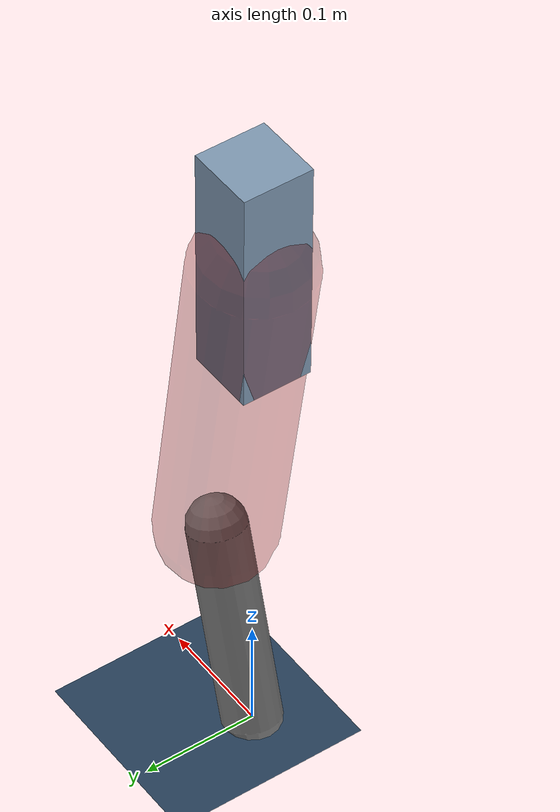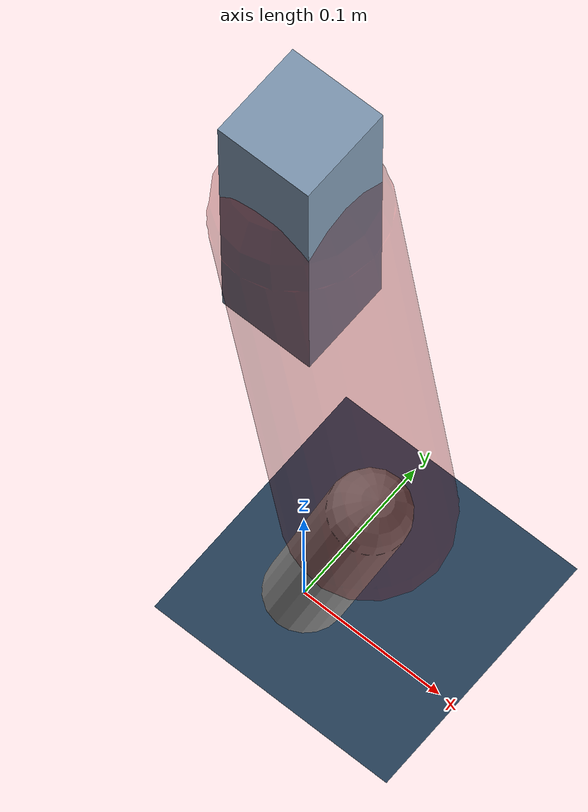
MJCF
<mujoco model="Hopper2D">
	<compiler inertiafromgeom="true" angle="radian" />
	<option timestep="0.001" integrator="implicit" cone="elliptic" solver="Newton" tolerance="1e-10" />

	<default>
		<geom contype="1" conaffinity="1" condim="3" friction="2 0.005 0.0001" solref="0.005 1" />
		<joint limited="true" damping="0.1" />
	</default>

	<asset>
		<texture name="skybox" type="skybox" builtin="gradient" rgb1=".4 .6 .8" rgb2="0 0 0" width="800" height="800" />
		<texture name="grid" type="2d" builtin="checker" rgb1=".1 .2 .3" rgb2=".2 .3 .4" width="300" height="300" mark="edge" markrgb=".2 .3 .4" />
		<material name="ground" texture="grid" texrepeat="1 1" texuniform="true" reflectance="0.1" />
		<material name="leg" rgba="0.5 0.6 0.7 1" />
	</asset>

	<worldbody>

		<geom name="floor" type="plane" size="5 5 0.25" material="ground" />

		<light directional="false" diffuse="0.8 0.8 0.8" specular="0.3 0.3 0.3" pos="0 0 2" dir="0 0 -1" />
		<light mode="targetbodycom" target="base" directional="false" diffuse="0.8 0.8 0.8" specular="0.3 0.3 0.3" pos="0 0 2" dir="0 0 -1" />

		<camera name="fixed" pos="0 -2 1" xyaxes="1 0 0 0 0 1" />
		<camera name="tracking" mode="trackcom" pos="0 -3 1" />

		<body name="root" pos="0 0 0.48578919747834326">
			<joint name="slide_x" type="slide" axis="1 0 0" range="-100 100" />
			<joint name="slide_z" type="slide" axis="0 0 1" range="0 10" />

			<body name="base" pos="0 0 0">
				<geom name="torso" type="box" size="0.03 0.03 0.1" mass="2.187" material="leg" />

				<body name="link1" pos="0 0 0" euler="0 1.4175466801426884 0">
					<joint type="hinge" axis="0 -1 0" pos="0 0 0" name="hinge1" limited="true" range="-3.14 3.14" stiffness="0" damping="0.1" />
					<geom name="thigh" type="capsule" fromto="0 0 0 0.3127373616679899 0 0" size="0.05" rgba="0.5 0 0 0.3" mass="1.0233646126703717" />

					<body name="link2" pos="0.3127373616679899 0 0" euler="0 0.41709813818454955 0">
						<joint type="hinge" axis="0 -1 0" pos="0 0 0" name="hinge2" limited="true" range="-3.14 3.14" stiffness="0" damping="0.1" />
						<geom name="shank" type="capsule" fromto="0 0 0 0.18305183581035342 0 0" size="0.025" mass="0.38654146864828276" />

					</body>
				</body>
			</body>
		</body>
	</worldbody>

	<actuator>
		<motor name="torque1" joint="hinge1" ctrlrange="-44.134048232862185 44.134048232862185" ctrllimited="true" gear="1" />
		<motor name="torque2" joint="hinge2" ctrlrange="-91.13655153721812 91.13655153721812" ctrllimited="true" gear="1" />
	</actuator>
</mujoco>
